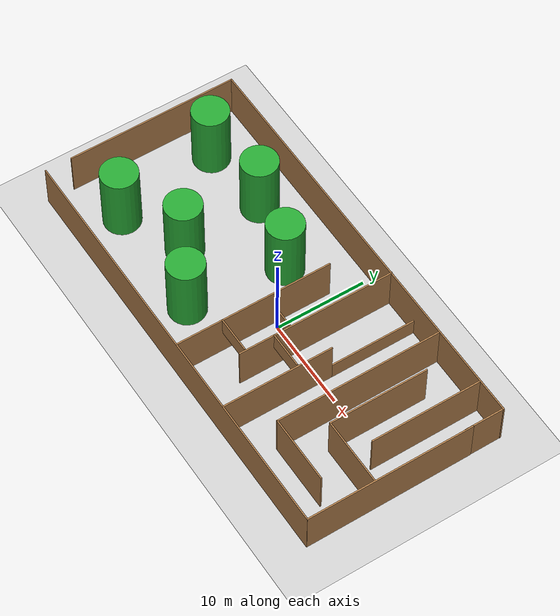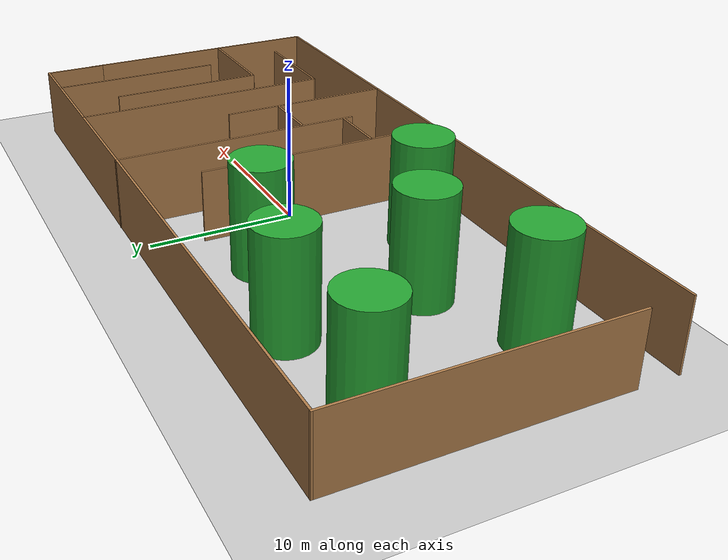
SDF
<sdf version="1.7">
 <world name="default">
  <plugin name="gazebo_ros_state" filename="libgazebo_ros_state.so">
   <ros>
    <namespace>/plug</namespace>
    <argument>model_states:=model_states_plug</argument>
    <argument>link_states:=link_states_plug</argument>
   </ros>
   <update_rate>100.0</update_rate>
  </plugin>
  <plugin name="disable_physics" filename="libdisable_physics.so"/>
  <light name="sun" type="directional">
   <pose>0 0 10 0 -0 0</pose>
   <diffuse>0.8 0.8 0.8 1</diffuse>
   <specular>0.2 0.2 0.2 1</specular>
   <attenuation>
    <range>1000</range>
    <constant>0.9</constant>
    <linear>0.01</linear>
    <quadratic>0.001</quadratic>
   </attenuation>
   <direction>-0.5 0.1 -0.9</direction>
   <spot><inner_angle>0</inner_angle><outer_angle>0</outer_angle><falloff>0</falloff></spot>
  </light>
  <model name="ground_plane">
   <static>1</static>
   <link name="link">
    <collision name="collision">
     <geometry><plane><normal>0 0 1</normal><size>100 100</size></plane></geometry>
     <surface>
      <contact><collide_bitmask>65535</collide_bitmask></contact>
      <friction><ode><mu>100</mu><mu2>50</mu2></ode></friction>
     </surface>
    </collision>
    <visual name="visual">
     <cast_shadows>0</cast_shadows>
     <geometry><plane><normal>0 0 1</normal><size>100 100</size></plane></geometry>
     <material>
      <script><uri>file://media/materials/scripts/gazebo.material</uri><name>Gazebo/Grey</name></script>
     </material>
    </visual>
   </link>
  </model>
  <gravity>0 0 -9.8</gravity>
  <magnetic_field>6e-06 2.3e-05 -4.2e-05</magnetic_field>
  <atmosphere type="adiabatic"/>
  <physics type="ode">
   <max_step_size>0.01</max_step_size>
   <real_time_factor>1</real_time_factor>
   <real_time_update_rate>100</real_time_update_rate>
  </physics>
  <scene><ambient>0.4 0.4 0.4 1</ambient><background>0.7 0.7 0.7 1</background><shadows>1</shadows></scene>
  <audio><device>default</device></audio>
  <spherical_coordinates>
   <surface_model>EARTH_WGS84</surface_model>
   <latitude_deg>0</latitude_deg>
   <longitude_deg>0</longitude_deg>
   <elevation>0</elevation>
   <heading_deg>0</heading_deg>
  </spherical_coordinates>
  <model name="basse_flower">
   <pose>-1.80092 -0.0452 0 0 -0 0</pose>
   <link name="Wall_10">
    <collision name="Wall_10_Collision">
     <geometry><box><size>47.5 0.15 5</size></box></geometry>
     <pose>0 0 2.5 0 -0 0</pose>
    </collision>
    <visual name="Wall_10_Visual">
     <pose>0 0 2.5 0 -0 0</pose>
     <geometry><box><size>47.5 0.15 5</size></box></geometry>
     <material>
      <script><uri>file://media/materials/scripts/gazebo.material</uri><name>Gazebo/Wood</name></script>
      <ambient>1 1 1 1</ambient>
     </material>
     <meta><layer>0</layer></meta>
    </visual>
    <pose>-0 -10.9097 0 0 -0 0</pose>
   </link>
   <link name="Wall_13">
    <collision name="Wall_13_Collision">
     <geometry><box><size>18.4388 0.15 5</size></box></geometry>
     <pose>0 0 2.5 0 -0 0</pose>
    </collision>
    <visual name="Wall_13_Visual">
     <pose>0 0 2.5 0 -0 0</pose>
     <geometry><box><size>18.4388 0.15 5</size></box></geometry>
     <material>
      <script><uri>file://media/materials/scripts/gazebo.material</uri><name>Gazebo/Wood</name></script>
      <ambient>1 1 1 1</ambient>
     </material>
     <meta><layer>0</layer></meta>
    </visual>
    <pose>23.675 -1.73473 0 0 -0 1.5708</pose>
   </link>
   <link name="Wall_15">
    <collision name="Wall_15_Collision">
     <geometry><box><size>12.25 0.15 5</size></box></geometry>
     <pose>0 0 2.5 0 -0 0</pose>
    </collision>
    <visual name="Wall_15_Visual">
     <pose>0 0 2.5 0 -0 0</pose>
     <geometry><box><size>12.25 0.15 5</size></box></geometry>
     <material>
      <script><uri>file://media/materials/scripts/gazebo.material</uri><name>Gazebo/Wood</name></script>
      <ambient>1 1 1 1</ambient>
     </material>
     <meta><layer>0</layer></meta>
    </visual>
    <pose>19.978 4.75368 0 0 -0 -1.5708</pose>
   </link>
   <link name="Wall_17">
    <collision name="Wall_17_Collision">
     <geometry><box><size>7.5 0.15 5</size></box></geometry>
     <pose>0 0 2.5 0 -0 0</pose>
    </collision>
    <visual name="Wall_17_Visual">
     <pose>0 0 2.5 0 -0 0</pose>
     <geometry><box><size>7.5 0.15 5</size></box></geometry>
     <material>
      <script><uri>file://media/materials/scripts/gazebo.material</uri><name>Gazebo/Wood</name></script>
      <ambient>1 1 1 1</ambient>
     </material>
     <meta><layer>0</layer></meta>
    </visual>
    <pose>19.902 -3.50732 0 0 -0 0</pose>
   </link>
   <link name="Wall_19">
    <collision name="Wall_19_Collision">
     <geometry><box><size>11 0.15 5</size></box></geometry>
     <pose>0 0 2.5 0 -0 0</pose>
    </collision>
    <visual name="Wall_19_Visual">
     <pose>0 0 2.5 0 -0 0</pose>
     <geometry><box><size>11 0.15 5</size></box></geometry>
     <material>
      <script><uri>file://media/materials/scripts/gazebo.material</uri><name>Gazebo/Wood</name></script>
      <ambient>1 1 1 1</ambient>
     </material>
     <meta><layer>0</layer></meta>
    </visual>
    <pose>16.227 1.94668 0 0 -0 -1.5708</pose>
   </link>
   <link name="Wall_21">
    <collision name="Wall_21_Collision">
     <geometry><box><size>18.4695 0.15 5</size></box></geometry>
     <pose>0 0 2.5 0 -0 0</pose>
    </collision>
    <visual name="Wall_21_Visual">
     <pose>0 0 2.5 0 -0 0</pose>
     <geometry><box><size>18.4695 0.15 5</size></box></geometry>
     <material>
      <script><uri>file://media/materials/scripts/gazebo.material</uri><name>Gazebo/Wood</name></script>
      <ambient>1 1 1 1</ambient>
     </material>
     <meta><layer>0</layer></meta>
    </visual>
    <pose>13.3695 1.67018 0 0 -0 -1.5691</pose>
   </link>
   <link name="Wall_22">
    <collision name="Wall_22_Collision">
     <geometry><box><size>7.5 0.15 5</size></box></geometry>
     <pose>0 0 2.5 0 -0 0</pose>
    </collision>
    <visual name="Wall_22_Visual">
     <pose>0 0 2.5 0 -0 0</pose>
     <geometry><box><size>7.5 0.15 5</size></box></geometry>
     <material>
      <script><uri>file://media/materials/scripts/gazebo.material</uri><name>Gazebo/Wood</name></script>
      <ambient>1 1 1 1</ambient>
     </material>
     <meta><layer>0</layer></meta>
    </visual>
    <pose>17.06 -7.48932 0 0 -0 0</pose>
   </link>
   <link name="Wall_24">
    <collision name="Wall_24_Collision">
     <geometry><box><size>12.25 0.15 5</size></box></geometry>
     <pose>0 0 2.5 0 -0 0</pose>
    </collision>
    <visual name="Wall_24_Visual">
     <pose>0 0 2.5 0 -0 0</pose>
     <geometry><box><size>12.25 0.15 5</size></box></geometry>
     <material>
      <script><uri>file://media/materials/scripts/gazebo.material</uri><name>Gazebo/Wood</name></script>
      <ambient>1 1 1 1</ambient>
     </material>
     <meta><layer>0</layer></meta>
    </visual>
    <pose>9.345 -4.79932 0 0 -0 -1.5708</pose>
   </link>
   <link name="Wall_27">
    <collision name="Wall_27_Collision">
     <geometry><box><size>9.75 0.15 2</size></box></geometry>
     <pose>0 0 1 0 -0 0</pose>
    </collision>
    <visual name="Wall_27_Visual">
     <pose>0 0 1 0 -0 0</pose>
     <geometry><box><size>9.75 0.15 2</size></box></geometry>
     <material>
      <script><uri>file://media/materials/scripts/gazebo.material</uri><name>Gazebo/Wood</name></script>
      <ambient>1 1 1 1</ambient>
     </material>
     <meta><layer>0</layer></meta>
    </visual>
    <pose>9.345 6.05068 0 0 -0 1.5708</pose>
   </link>
   <link name="Wall_33">
    <collision name="Wall_33_Collision">
     <geometry><box><size>19 0.15 5</size></box></geometry>
     <pose>0 0 2.5 0 -0 0</pose>
    </collision>
    <visual name="Wall_33_Visual">
     <pose>0 0 2.5 0 -0 0</pose>
     <geometry><box><size>19 0.15 5</size></box></geometry>
     <material>
      <script><uri>file://media/materials/scripts/gazebo.material</uri><name>Gazebo/Wood</name></script>
      <ambient>1 1 1 1</ambient>
     </material>
     <meta><layer>0</layer></meta>
    </visual>
    <pose>-23.675 1.45868 0 0 -0 -1.5708</pose>
   </link>
   <link name="Wall_8">
    <collision name="Wall_8_Collision">
     <geometry><box><size>47.5 0.15 5</size></box></geometry>
     <pose>0 0 2.5 0 -0 0</pose>
    </collision>
    <visual name="Wall_8_Visual">
     <pose>0 0 2.5 0 -0 0</pose>
     <geometry><box><size>47.5 0.15 5</size></box></geometry>
     <material>
      <script><uri>file://media/materials/scripts/gazebo.material</uri><name>Gazebo/Wood</name></script>
      <ambient>1 1 1 1</ambient>
     </material>
     <meta><layer>0</layer></meta>
    </visual>
    <pose>-0 10.8967 0 0 -0 -3.14104</pose>
   </link>
   <static>1</static>
  </model>
  <model name="wall2">
   <pose>1.726 2.22 0 0 -0 0</pose>
   <link name="Wall_37">
    <collision name="Wall_37_Collision">
     <geometry><box><size>17.5 0.15 5</size></box></geometry>
     <pose>0 0 2.5 0 -0 0</pose>
    </collision>
    <visual name="Wall_37_Visual">
     <pose>0 0 2.5 0 -0 0</pose>
     <geometry><box><size>17.5 0.15 5</size></box></geometry>
     <material>
      <script><uri>file://media/materials/scripts/gazebo.material</uri><name>Gazebo/Wood</name></script>
      <ambient>1 1 1 1</ambient>
     </material>
     <meta><layer>0</layer></meta>
    </visual>
    <pose>1.651 -0 0 0 -0 1.5708</pose>
   </link>
   <static>1</static>
  </model>
  <model name="wall2_0">
   <pose>-2.40068 -2.23215 0 0 -0 0</pose>
   <link name="Wall_37">
    <collision name="Wall_37_Collision">
     <geometry><box><size>17.5 0.15 5</size></box></geometry>
     <pose>0 0 2.5 0 -0 0</pose>
    </collision>
    <visual name="Wall_37_Visual">
     <pose>0 0 2.5 0 -0 0</pose>
     <geometry><box><size>17.5 0.15 5</size></box></geometry>
     <material>
      <script><uri>file://media/materials/scripts/gazebo.material</uri><name>Gazebo/Wood</name></script>
      <ambient>1 1 1 1</ambient>
     </material>
     <meta><layer>0</layer></meta>
    </visual>
    <pose>1.651 -0 0 0 -0 1.5708</pose>
   </link>
   <static>1</static>
  </model>
  <model name="wall3">
   <pose>3.68221 -0.97888 3.03376 0 -0 0</pose>
   <link name="Wall_39">
    <collision name="Wall_39_Collision">
     <geometry><box><size>4 0.15 2</size></box></geometry>
     <pose>0 0 1 0 -0 0</pose>
    </collision>
    <visual name="Wall_39_Visual">
     <pose>0 0 1 0 -0 0</pose>
     <geometry><box><size>4 0.15 2</size></box></geometry>
     <material>
      <script><uri>file://media/materials/scripts/gazebo.material</uri><name>Gazebo/Wood</name></script>
      <ambient>1 1 1 1</ambient>
     </material>
     <meta><layer>0</layer></meta>
    </visual>
    <pose>1.717 -1.613 0 0 -0 3.14159</pose>
   </link>
   <static>1</static>
  </model>
  <model name="wall3_clone">
   <pose>-0.47969 -4.18179 3.03261 0 -0 0</pose>
   <link name="Wall_39">
    <collision name="Wall_39_Collision">
     <geometry><box><size>4 0.15 2</size></box></geometry>
     <pose>0 0 1 0 -0 0</pose>
    </collision>
    <visual name="Wall_39_Visual">
     <pose>0 0 1 0 -0 0</pose>
     <geometry><box><size>4 0.15 2</size></box></geometry>
     <material>
      <script><uri>file://media/materials/scripts/gazebo.material</uri><name>Gazebo/Wood</name></script>
      <ambient>1 1 1 1</ambient>
     </material>
     <meta><layer>0</layer></meta>
    </visual>
    <pose>1.717 -1.613 0 0 -0 3.14159</pose>
   </link>
   <static>1</static>
  </model>
  <model name="wall3_clone_clone">
   <pose>-0.42265 1.90137 0.348928 0 -0 0</pose>
   <link name="Wall_39">
    <collision name="Wall_39_Collision">
     <geometry><box><size>4 0.15 2</size></box></geometry>
     <pose>0 0 1 0 -0 0</pose>
    </collision>
    <visual name="Wall_39_Visual">
     <pose>0 0 1 0 -0 0</pose>
     <geometry><box><size>4 0.15 2</size></box></geometry>
     <material>
      <script><uri>file://media/materials/scripts/gazebo.material</uri><name>Gazebo/Wood</name></script>
      <ambient>1 1 1 1</ambient>
     </material>
     <meta><layer>0</layer></meta>
    </visual>
    <pose>1.717 -1.613 0 0 -0 3.14159</pose>
   </link>
   <static>1</static>
  </model>
  <model name="unit_cylinder_green_2">
   <link name="link">
    <inertial>
     <mass>1</mass>
     <inertia><ixx>0.145833</ixx><ixy>0</ixy><ixz>0</ixz><iyy>0.145833</iyy><iyz>0</iyz><izz>0.125</izz></inertia>
    </inertial>
    <visual name="visual">
     <geometry><cylinder><radius>2</radius><length>10</length></cylinder></geometry>
     <material>
      <script><name>Gazebo/Green</name><uri>file://media/materials/scripts/gazebo.material</uri></script>
      <shader type="pixel"><normal_map>__default__</normal_map></shader>
      <ambient>0 1 0.3 1</ambient>
      <diffuse>0.7 0.7 0.7 1</diffuse>
      <specular>0.01 0.01 0.01 1</specular>
      <emissive>0 0 0 1</emissive>
     </material>
    </visual>
    <collision name="collision">
     <geometry><cylinder><radius>2</radius><length>5</length></cylinder></geometry>
     <surface>
      <friction>
       <ode><mu>1</mu><mu2>1</mu2><fdir1>0 0 0</fdir1><slip1>0</slip1><slip2>0</slip2></ode>
       <torsional>
        <coefficient>1</coefficient>
        <patch_radius>0</patch_radius>
        <surface_radius>0</surface_radius>
        <use_patch_radius>1</use_patch_radius>
        <ode><slip>0</slip></ode>
       </torsional>
      </friction>
      <bounce><restitution_coefficient>0</restitution_coefficient><threshold>1e+06</threshold></bounce>
      <contact>
       <collide_without_contact>0</collide_without_contact>
       <collide_without_contact_bitmask>1</collide_without_contact_bitmask>
       <collide_bitmask>1</collide_bitmask>
       <ode>
        <soft_cfm>0</soft_cfm>
        <soft_erp>0.2</soft_erp>
        <kp>1e+13</kp>
        <kd>1</kd>
        <max_vel>0.01</max_vel>
        <min_depth>0</min_depth>
       </ode>
       <bullet>
        <split_impulse>1</split_impulse>
        <split_impulse_penetration_threshold>-0.01</split_impulse_penetration_threshold>
        <soft_cfm>0</soft_cfm>
        <soft_erp>0.2</soft_erp>
        <kp>1e+13</kp>
        <kd>1</kd>
       </bullet>
      </contact>
     </surface>
    </collision>
   </link>
   <static>0</static>
   <pose>-5.56504 4.46101 2.49999 0 0 -0.000967</pose>
  </model>
  <model name="unit_cylinder_green_2_clone">
   <link name="link">
    <inertial>
     <mass>1</mass>
     <inertia><ixx>0.145833</ixx><ixy>0</ixy><ixz>0</ixz><iyy>0.145833</iyy><iyz>0</iyz><izz>0.125</izz></inertia>
    </inertial>
    <visual name="visual">
     <geometry><cylinder><radius>2</radius><length>10</length></cylinder></geometry>
     <material>
      <script><name>Gazebo/Green</name><uri>file://media/materials/scripts/gazebo.material</uri></script>
      <shader type="pixel"><normal_map>__default__</normal_map></shader>
      <ambient>0 1 0.3 1</ambient>
      <diffuse>0.7 0.7 0.7 1</diffuse>
      <specular>0.01 0.01 0.01 1</specular>
      <emissive>0 0 0 1</emissive>
     </material>
    </visual>
    <collision name="collision">
     <geometry><cylinder><radius>2</radius><length>5</length></cylinder></geometry>
     <surface>
      <friction>
       <ode><mu>1</mu><mu2>1</mu2><fdir1>0 0 0</fdir1><slip1>0</slip1><slip2>0</slip2></ode>
       <torsional>
        <coefficient>1</coefficient>
        <patch_radius>0</patch_radius>
        <surface_radius>0</surface_radius>
        <use_patch_radius>1</use_patch_radius>
        <ode><slip>0</slip></ode>
       </torsional>
      </friction>
      <bounce><restitution_coefficient>0</restitution_coefficient><threshold>1e+06</threshold></bounce>
      <contact>
       <collide_without_contact>0</collide_without_contact>
       <collide_without_contact_bitmask>1</collide_without_contact_bitmask>
       <collide_bitmask>1</collide_bitmask>
       <ode>
        <soft_cfm>0</soft_cfm>
        <soft_erp>0.2</soft_erp>
        <kp>1e+13</kp>
        <kd>1</kd>
        <max_vel>0.01</max_vel>
        <min_depth>0</min_depth>
       </ode>
       <bullet>
        <split_impulse>1</split_impulse>
        <split_impulse_penetration_threshold>-0.01</split_impulse_penetration_threshold>
        <soft_cfm>0</soft_cfm>
        <soft_erp>0.2</soft_erp>
        <kp>1e+13</kp>
        <kd>1</kd>
       </bullet>
      </contact>
     </surface>
    </collision>
   </link>
   <static>0</static>
   <pose>-6.75576 -6.14131 2.49999 0 0 -0.000967</pose>
  </model>
  <model name="unit_cylinder_green_2_clone_0">
   <link name="link">
    <inertial>
     <mass>1</mass>
     <inertia><ixx>0.145833</ixx><ixy>0</ixy><ixz>0</ixz><iyy>0.145833</iyy><iyz>0</iyz><izz>0.125</izz></inertia>
    </inertial>
    <visual name="visual">
     <geometry><cylinder><radius>2</radius><length>10</length></cylinder></geometry>
     <material>
      <script><name>Gazebo/Green</name><uri>file://media/materials/scripts/gazebo.material</uri></script>
      <shader type="pixel"><normal_map>__default__</normal_map></shader>
      <ambient>0 1 0.3 1</ambient>
      <diffuse>0.7 0.7 0.7 1</diffuse>
      <specular>0.01 0.01 0.01 1</specular>
      <emissive>0 0 0 1</emissive>
     </material>
    </visual>
    <collision name="collision">
     <geometry><cylinder><radius>2</radius><length>5</length></cylinder></geometry>
     <surface>
      <friction>
       <ode><mu>1</mu><mu2>1</mu2><fdir1>0 0 0</fdir1><slip1>0</slip1><slip2>0</slip2></ode>
       <torsional>
        <coefficient>1</coefficient>
        <patch_radius>0</patch_radius>
        <surface_radius>0</surface_radius>
        <use_patch_radius>1</use_patch_radius>
        <ode><slip>0</slip></ode>
       </torsional>
      </friction>
      <bounce><restitution_coefficient>0</restitution_coefficient><threshold>1e+06</threshold></bounce>
      <contact>
       <collide_without_contact>0</collide_without_contact>
       <collide_without_contact_bitmask>1</collide_without_contact_bitmask>
       <collide_bitmask>1</collide_bitmask>
       <ode>
        <soft_cfm>0</soft_cfm>
        <soft_erp>0.2</soft_erp>
        <kp>1e+13</kp>
        <kd>1</kd>
        <max_vel>0.01</max_vel>
        <min_depth>0</min_depth>
       </ode>
       <bullet>
        <split_impulse>1</split_impulse>
        <split_impulse_penetration_threshold>-0.01</split_impulse_penetration_threshold>
        <soft_cfm>0</soft_cfm>
        <soft_erp>0.2</soft_erp>
        <kp>1e+13</kp>
        <kd>1</kd>
       </bullet>
      </contact>
     </surface>
    </collision>
   </link>
   <static>0</static>
   <pose>-19.596 -5.87532 2.49999 0 0 -0.000967</pose>
  </model>
  <model name="unit_cylinder_green_2_clone_1">
   <link name="link">
    <inertial>
     <mass>1</mass>
     <inertia><ixx>0.145833</ixx><ixy>0</ixy><ixz>0</ixz><iyy>0.145833</iyy><iyz>0</iyz><izz>0.125</izz></inertia>
    </inertial>
    <visual name="visual">
     <geometry><cylinder><radius>2</radius><length>10</length></cylinder></geometry>
     <material>
      <script><name>Gazebo/Green</name><uri>file://media/materials/scripts/gazebo.material</uri></script>
      <shader type="pixel"><normal_map>__default__</normal_map></shader>
      <ambient>0 1 0.3 1</ambient>
      <diffuse>0.7 0.7 0.7 1</diffuse>
      <specular>0.01 0.01 0.01 1</specular>
      <emissive>0 0 0 1</emissive>
     </material>
    </visual>
    <collision name="collision">
     <geometry><cylinder><radius>2</radius><length>5</length></cylinder></geometry>
     <surface>
      <friction>
       <ode><mu>1</mu><mu2>1</mu2><fdir1>0 0 0</fdir1><slip1>0</slip1><slip2>0</slip2></ode>
       <torsional>
        <coefficient>1</coefficient>
        <patch_radius>0</patch_radius>
        <surface_radius>0</surface_radius>
        <use_patch_radius>1</use_patch_radius>
        <ode><slip>0</slip></ode>
       </torsional>
      </friction>
      <bounce><restitution_coefficient>0</restitution_coefficient><threshold>1e+06</threshold></bounce>
      <contact>
       <collide_without_contact>0</collide_without_contact>
       <collide_without_contact_bitmask>1</collide_without_contact_bitmask>
       <collide_bitmask>1</collide_bitmask>
       <ode>
        <soft_cfm>0</soft_cfm>
        <soft_erp>0.2</soft_erp>
        <kp>1e+13</kp>
        <kd>1</kd>
        <max_vel>0.01</max_vel>
        <min_depth>0</min_depth>
       </ode>
       <bullet>
        <split_impulse>1</split_impulse>
        <split_impulse_penetration_threshold>-0.01</split_impulse_penetration_threshold>
        <soft_cfm>0</soft_cfm>
        <soft_erp>0.2</soft_erp>
        <kp>1e+13</kp>
        <kd>1</kd>
       </bullet>
      </contact>
     </surface>
    </collision>
   </link>
   <static>0</static>
   <pose>-13.3941 6.50248 2.49999 0 0 -0.000967</pose>
  </model>
  <model name="unit_cylinder_green_2_clone_2">
   <link name="link">
    <inertial>
     <mass>1</mass>
     <inertia><ixx>0.145833</ixx><ixy>0</ixy><ixz>0</ixz><iyy>0.145833</iyy><iyz>0</iyz><izz>0.125</izz></inertia>
    </inertial>
    <visual name="visual">
     <geometry><cylinder><radius>2</radius><length>10</length></cylinder></geometry>
     <material>
      <script><name>Gazebo/Green</name><uri>file://media/materials/scripts/gazebo.material</uri></script>
      <shader type="pixel"><normal_map>__default__</normal_map></shader>
      <ambient>0 1 0.3 1</ambient>
      <diffuse>0.7 0.7 0.7 1</diffuse>
      <specular>0.01 0.01 0.01 1</specular>
      <emissive>0 0 0 1</emissive>
     </material>
    </visual>
    <collision name="collision">
     <geometry><cylinder><radius>2</radius><length>5</length></cylinder></geometry>
     <surface>
      <friction>
       <ode><mu>1</mu><mu2>1</mu2><fdir1>0 0 0</fdir1><slip1>0</slip1><slip2>0</slip2></ode>
       <torsional>
        <coefficient>1</coefficient>
        <patch_radius>0</patch_radius>
        <surface_radius>0</surface_radius>
        <use_patch_radius>1</use_patch_radius>
        <ode><slip>0</slip></ode>
       </torsional>
      </friction>
      <bounce><restitution_coefficient>0</restitution_coefficient><threshold>1e+06</threshold></bounce>
      <contact>
       <collide_without_contact>0</collide_without_contact>
       <collide_without_contact_bitmask>1</collide_without_contact_bitmask>
       <collide_bitmask>1</collide_bitmask>
       <ode>
        <soft_cfm>0</soft_cfm>
        <soft_erp>0.2</soft_erp>
        <kp>1e+13</kp>
        <kd>1</kd>
        <max_vel>0.01</max_vel>
        <min_depth>0</min_depth>
       </ode>
       <bullet>
        <split_impulse>1</split_impulse>
        <split_impulse_penetration_threshold>-0.01</split_impulse_penetration_threshold>
        <soft_cfm>0</soft_cfm>
        <soft_erp>0.2</soft_erp>
        <kp>1e+13</kp>
        <kd>1</kd>
       </bullet>
      </contact>
     </surface>
    </collision>
   </link>
   <static>0</static>
   <pose>-21.4099 5.80727 2.49999 0 0 -0.000967</pose>
  </model>
  <model name="unit_cylinder_green_2_clone_clone">
   <link name="link">
    <inertial>
     <mass>1</mass>
     <inertia><ixx>0.145833</ixx><ixy>0</ixy><ixz>0</ixz><iyy>0.145833</iyy><iyz>0</iyz><izz>0.125</izz></inertia>
    </inertial>
    <visual name="visual">
     <geometry><cylinder><radius>2</radius><length>10</length></cylinder></geometry>
     <material>
      <script><name>Gazebo/Green</name><uri>file://media/materials/scripts/gazebo.material</uri></script>
      <shader type="pixel"><normal_map>__default__</normal_map></shader>
      <ambient>0 1 0.3 1</ambient>
      <diffuse>0.7 0.7 0.7 1</diffuse>
      <specular>0.01 0.01 0.01 1</specular>
      <emissive>0 0 0 1</emissive>
     </material>
    </visual>
    <collision name="collision">
     <geometry><cylinder><radius>2</radius><length>5</length></cylinder></geometry>
     <surface>
      <friction>
       <ode><mu>1</mu><mu2>1</mu2><fdir1>0 0 0</fdir1><slip1>0</slip1><slip2>0</slip2></ode>
       <torsional>
        <coefficient>1</coefficient>
        <patch_radius>0</patch_radius>
        <surface_radius>0</surface_radius>
        <use_patch_radius>1</use_patch_radius>
        <ode><slip>0</slip></ode>
       </torsional>
      </friction>
      <bounce><restitution_coefficient>0</restitution_coefficient><threshold>1e+06</threshold></bounce>
      <contact>
       <collide_without_contact>0</collide_without_contact>
       <collide_without_contact_bitmask>1</collide_without_contact_bitmask>
       <collide_bitmask>1</collide_bitmask>
       <ode>
        <soft_cfm>0</soft_cfm>
        <soft_erp>0.2</soft_erp>
        <kp>1e+13</kp>
        <kd>1</kd>
        <max_vel>0.01</max_vel>
        <min_depth>0</min_depth>
       </ode>
       <bullet>
        <split_impulse>1</split_impulse>
        <split_impulse_penetration_threshold>-0.01</split_impulse_penetration_threshold>
        <soft_cfm>0</soft_cfm>
        <soft_erp>0.2</soft_erp>
        <kp>1e+13</kp>
        <kd>1</kd>
       </bullet>
      </contact>
     </surface>
    </collision>
   </link>
   <static>0</static>
   <pose>-12.8876 -2.64085 2.49999 0 0 -0.000967</pose>
  </model>
  <model name="entrance_wall">
   <pose>10.962 5.384 0 0 -0 0</pose>
   <link name="Wall_0">
    <collision name="Wall_0_Collision">
     <geometry><box><size>4.25 0.15 5</size></box></geometry>
     <pose>0 0 2.5 0 -0 0</pose>
    </collision>
    <visual name="Wall_0_Visual">
     <pose>0 0 2.5 0 -0 0</pose>
     <geometry><box><size>4.25 0.15 5</size></box></geometry>
     <material>
      <script><uri>file://media/materials/scripts/gazebo.material</uri><name>Gazebo/Wood</name></script>
      <ambient>1 1 1 1</ambient>
     </material>
     <meta><layer>0</layer></meta>
    </visual>
    <pose>10.887 3.259 0 0 -0 1.5708</pose>
   </link>
   <static>1</static>
  </model>
 </world>
</sdf>
